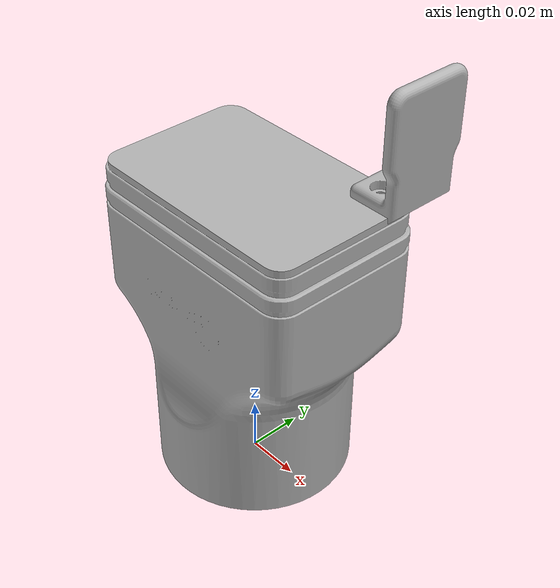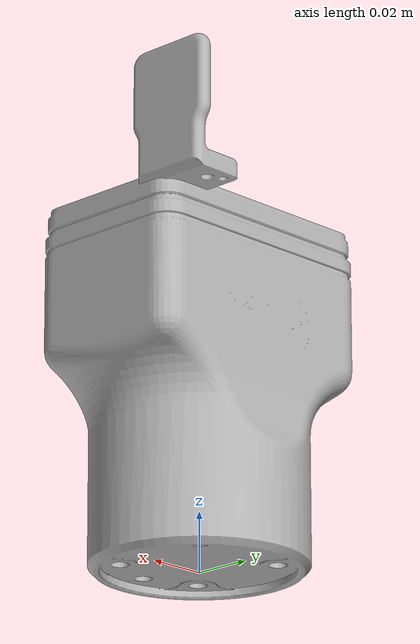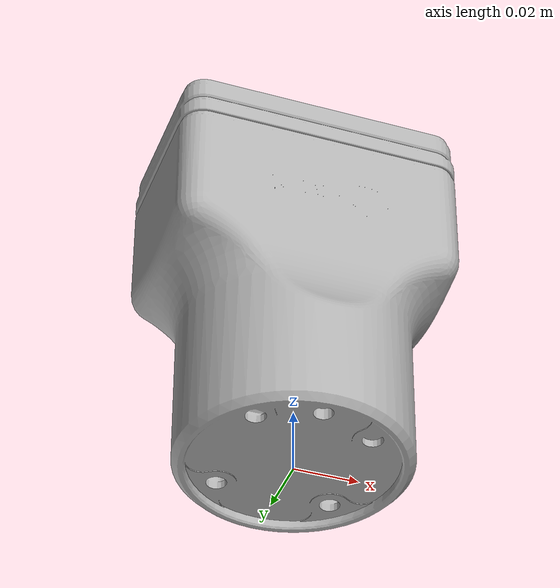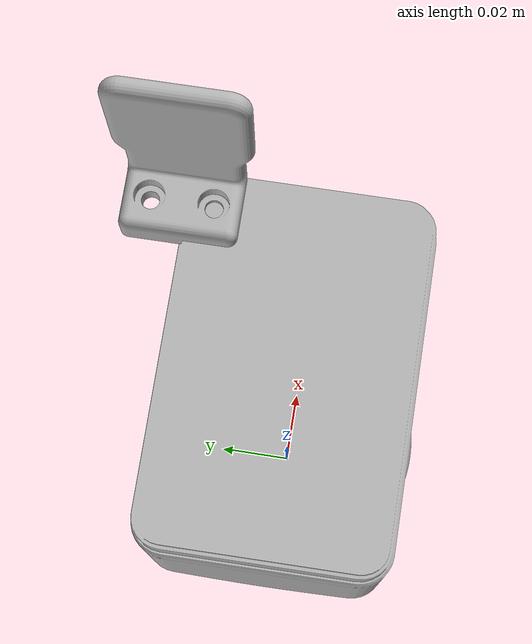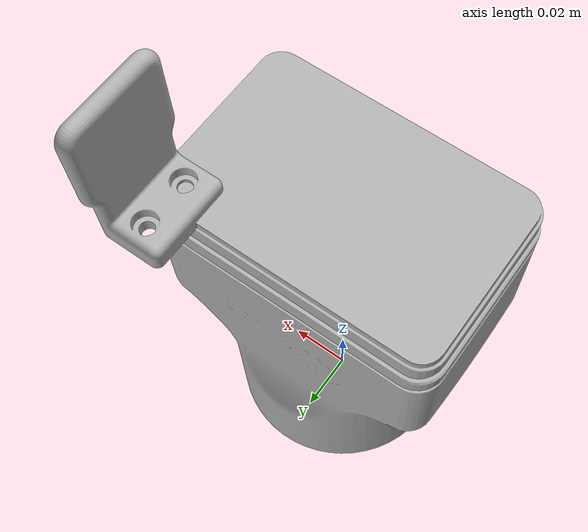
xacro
<?xml version="1.0" ?>
<robot name="2FG7_inwards" xmlns:xacro="http://www.ros.org/wiki/xacro">

<xacro:include filename="$(find 2FG7_inwards_description)/urdf/materials.xacro" />
<xacro:include filename="$(find 2FG7_inwards_description)/urdf/2FG7_inwards.trans" />
<xacro:include filename="$(find 2FG7_inwards_description)/urdf/2FG7_inwards.gazebo" />
<link name="base_link">
  <inertial>
    <origin xyz="-4.8989159583623376e-05 2.847569602502098e-06 0.06811082379775064" rpy="0 0 0"/>
    <mass value="1.2646523179240972"/>
    <inertia ixx="0.001504" iyy="0.001812" izz="0.001053" ixy="-0.0" iyz="0.0" ixz="-3e-06"/>
  </inertial>
  <visual>
    <origin xyz="0 0 0" rpy="0 0 0"/>
    <geometry>
      <mesh filename="package://2FG7_inwards_description/meshes/base_link.stl" scale="0.001 0.001 0.001"/>
    </geometry>
    <material name="silver"/>
  </visual>
  <collision>
    <origin xyz="0 0 0" rpy="0 0 0"/>
    <geometry>
      <mesh filename="package://2FG7_inwards_description/meshes/base_link.stl" scale="0.001 0.001 0.001"/>
    </geometry>
  </collision>
</link>

<link name="right_finger_v1_1">
  <inertial>
    <origin xyz="0.029847703322119633 0.029496959480087837 0.015234215486232036" rpy="0 0 0"/>
    <mass value="0.023219383355922288"/>
    <inertia ixx="6e-06" iyy="5e-06" izz="2e-06" ixy="-0.0" iyz="0.0" ixz="-1e-06"/>
  </inertial>
  <visual>
    <origin xyz="0.054361 0.029494 -0.12005" rpy="0 0 0"/>
    <geometry>
      <mesh filename="package://2FG7_inwards_description/meshes/right_finger_v1_1.stl" scale="0.001 0.001 0.001"/>
    </geometry>
    <material name="silver"/>
  </visual>
  <collision>
    <origin xyz="0.054361 0.029494 -0.12005" rpy="0 0 0"/>
    <geometry>
      <mesh filename="package://2FG7_inwards_description/meshes/right_finger_v1_1.stl" scale="0.001 0.001 0.001"/>
    </geometry>
  </collision>
</link>

<link name="left_finger_v1_1">
  <inertial>
    <origin xyz="-0.007725703322151688 0.029491040519911117 0.015234215486238503" rpy="0 0 0"/>
    <mass value="0.023219383355922288"/>
    <inertia ixx="6e-06" iyy="5e-06" izz="2e-06" ixy="-0.0" iyz="-0.0" ixz="1e-06"/>
  </inertial>
  <visual>
    <origin xyz="-0.032239 0.029494 -0.12005" rpy="0 0 0"/>
    <geometry>
      <mesh filename="package://2FG7_inwards_description/meshes/left_finger_v1_1.stl" scale="0.001 0.001 0.001"/>
    </geometry>
    <material name="silver"/>
  </visual>
  <collision>
    <origin xyz="-0.032239 0.029494 -0.12005" rpy="0 0 0"/>
    <geometry>
      <mesh filename="package://2FG7_inwards_description/meshes/left_finger_v1_1.stl" scale="0.001 0.001 0.001"/>
    </geometry>
  </collision>
</link>

<joint name="right_finger_joint" type="fixed">
  <origin xyz="-0.054361 -0.029494 0.12005" rpy="0 0 0"/>
  <parent link="base_link"/>
  <child link="right_finger_v1_1"/>
</joint>

<joint name="lef_finger_joint" type="prismatic">
  <origin xyz="0.032239 -0.029494 0.12005" rpy="0 0 0"/>
  <parent link="base_link"/>
  <child link="left_finger_v1_1"/>
  <axis xyz="-1.0 0.0 -0.0"/>
  <limit upper="0.038" lower="0.0" effort="100" velocity="100"/>
</joint>

</robot>

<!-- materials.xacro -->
<robot name="2FG7_inwards" xmlns:xacro="http://www.ros.org/wiki/xacro" >

<material name="silver">
  <color rgba="0.700 0.700 0.700 1.000"/>
</material>

</robot>

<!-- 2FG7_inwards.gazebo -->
<robot name="2FG7_inwards" xmlns:xacro="http://www.ros.org/wiki/xacro" >

<xacro:property name="body_color" value="Gazebo/Silver" />

<gazebo>
  <plugin name="control" filename="libgazebo_ros_control.so"/>
</gazebo>
<gazebo reference="base_link">
  <material>${body_color}</material>
  <mu1>0.2</mu1>
  <mu2>0.2</mu2>
  <selfCollide>true</selfCollide>
  <gravity>true</gravity>
</gazebo>

<gazebo reference="right_finger_v1_1">
  <material>${body_color}</material>
  <mu1>0.2</mu1>
  <mu2>0.2</mu2>
  <selfCollide>true</selfCollide>
</gazebo>

<gazebo reference="left_finger_v1_1">
  <material>${body_color}</material>
  <mu1>0.2</mu1>
  <mu2>0.2</mu2>
  <selfCollide>true</selfCollide>
</gazebo>

</robot>
